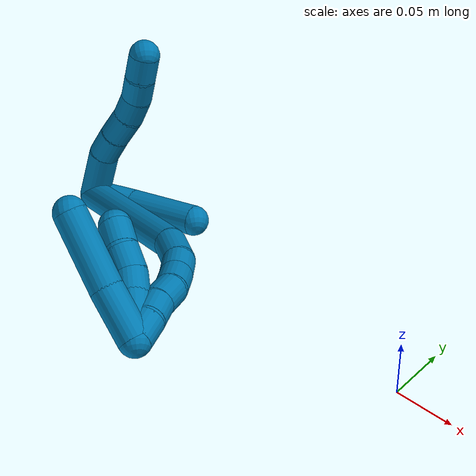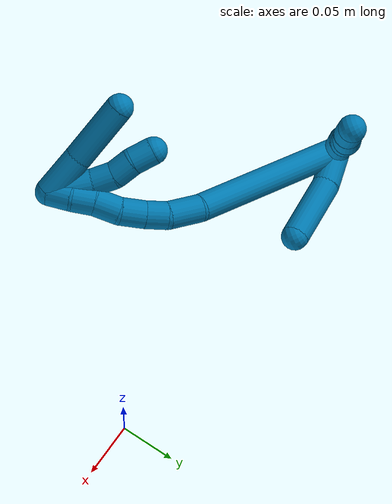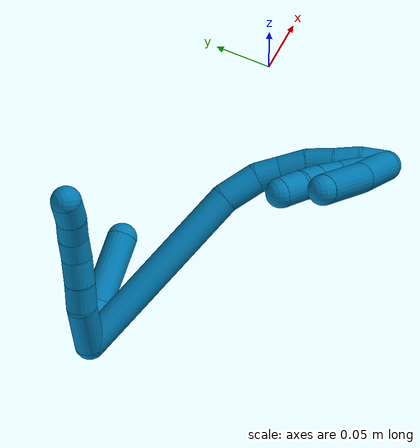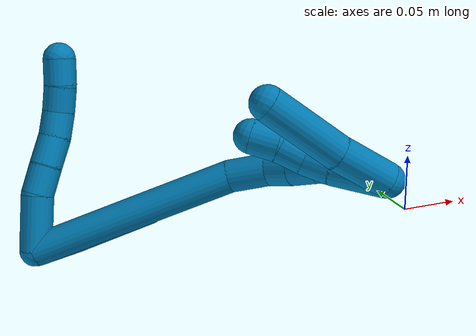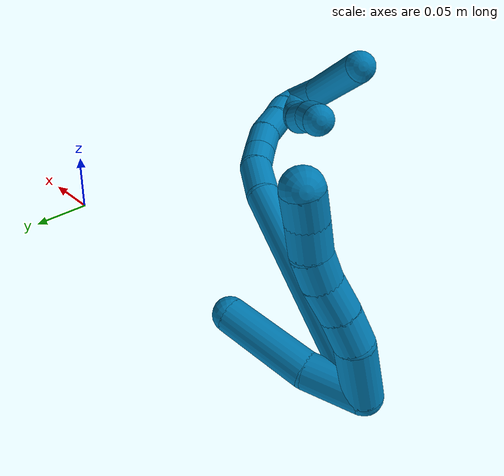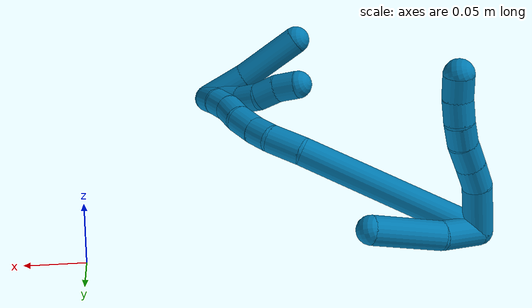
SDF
<sdf version="1.7">
 <world name="default">
  <model name="9">
   <static>0</static>
   <link name="9">
    <collision name="collision-cylinder-e_1_2_8">
     <pose>0.011427 0.016715 -0.007905 -2.01254 0.553561 -0.843344</pose>
     <geometry><cylinder><radius>0.0125</radius><length>0.043472</length></cylinder></geometry>
     <surface>
      <friction><ode><mu>1.16</mu><mu2>1.16</mu2><slip1>0</slip1><slip2>0</slip2></ode></friction>
      <contact><ode><kp>1e+06</kp><kd>1</kd><max_vel>0</max_vel><min_depth>0.001</min_depth></ode></contact>
     </surface>
    </collision>
    <visual name="visual-cylinder-e_1_2_8">
     <pose>0.011427 0.016715 -0.007905 -2.01254 0.553561 -0.843344</pose>
     <geometry><cylinder><radius>0.0125</radius><length>0.043472</length></cylinder></geometry>
     <material><ambient>0 0.490196 0.709804 1</ambient></material>
    </visual>
    <collision name="collision-cylinder-e_2_8_9">
     <pose>0.030786 0.041313 -0.017765 -1.81391 0.773603 -0.960121</pose>
     <geometry><cylinder><radius>0.0125</radius><length>0.022706</length></cylinder></geometry>
     <surface>
      <friction><ode><mu>1.16</mu><mu2>1.16</mu2><slip1>0</slip1><slip2>0</slip2></ode></friction>
      <contact><ode><kp>1e+06</kp><kd>1</kd><max_vel>0</max_vel><min_depth>0.001</min_depth></ode></contact>
     </surface>
    </collision>
    <visual name="visual-cylinder-e_2_8_9">
     <pose>0.030786 0.041313 -0.017765 -1.81391 0.773603 -0.960121</pose>
     <geometry><cylinder><radius>0.0125</radius><length>0.022706</length></cylinder></geometry>
     <material><ambient>0 0.490196 0.709804 1</ambient></material>
    </visual>
    <collision name="collision-cylinder-e_3_9_10">
     <pose>0.047384 0.056623 -0.021776 -1.84081 0.843905 -1.06613</pose>
     <geometry><cylinder><radius>0.0125</radius><length>0.023192</length></cylinder></geometry>
     <surface>
      <friction><ode><mu>1.16</mu><mu2>1.16</mu2><slip1>0</slip1><slip2>0</slip2></ode></friction>
      <contact><ode><kp>1e+06</kp><kd>1</kd><max_vel>0</max_vel><min_depth>0.001</min_depth></ode></contact>
     </surface>
    </collision>
    <visual name="visual-cylinder-e_3_9_10">
     <pose>0.047384 0.056623 -0.021776 -1.84081 0.843905 -1.06613</pose>
     <geometry><cylinder><radius>0.0125</radius><length>0.023192</length></cylinder></geometry>
     <material><ambient>0 0.490196 0.709804 1</ambient></material>
    </visual>
    <collision name="collision-cylinder-e_4_10_11">
     <pose>0.062482 0.071139 -0.026728 -1.9587 0.698668 -0.993905</pose>
     <geometry><cylinder><radius>0.0125</radius><length>0.020003</length></cylinder></geometry>
     <surface>
      <friction><ode><mu>1.16</mu><mu2>1.16</mu2><slip1>0</slip1><slip2>0</slip2></ode></friction>
      <contact><ode><kp>1e+06</kp><kd>1</kd><max_vel>0</max_vel><min_depth>0.001</min_depth></ode></contact>
     </surface>
    </collision>
    <visual name="visual-cylinder-e_4_10_11">
     <pose>0.062482 0.071139 -0.026728 -1.9587 0.698668 -0.993905</pose>
     <geometry><cylinder><radius>0.0125</radius><length>0.020003</length></cylinder></geometry>
     <material><ambient>0 0.490196 0.709804 1</ambient></material>
    </visual>
    <collision name="collision-cylinder-e_5_11_12">
     <pose>0.073765 0.08654 -0.032656 -1.92053 0.501449 -0.701761</pose>
     <geometry><cylinder><radius>0.0125</radius><length>0.020179</length></cylinder></geometry>
     <surface>
      <friction><ode><mu>1.16</mu><mu2>1.16</mu2><slip1>0</slip1><slip2>0</slip2></ode></friction>
      <contact><ode><kp>1e+06</kp><kd>1</kd><max_vel>0</max_vel><min_depth>0.001</min_depth></ode></contact>
     </surface>
    </collision>
    <visual name="visual-cylinder-e_5_11_12">
     <pose>0.073765 0.08654 -0.032656 -1.92053 0.501449 -0.701761</pose>
     <geometry><cylinder><radius>0.0125</radius><length>0.020179</length></cylinder></geometry>
     <material><ambient>0 0.490196 0.709804 1</ambient></material>
    </visual>
    <collision name="collision-cylinder-e_6_12_6">
     <pose>0.08365 0.102632 -0.040006 -2.07748 0.51486 -0.841081</pose>
     <geometry><cylinder><radius>0.0125</radius><length>0.020448</length></cylinder></geometry>
     <surface>
      <friction><ode><mu>1.16</mu><mu2>1.16</mu2><slip1>0</slip1><slip2>0</slip2></ode></friction>
      <contact><ode><kp>1e+06</kp><kd>1</kd><max_vel>0</max_vel><min_depth>0.001</min_depth></ode></contact>
     </surface>
    </collision>
    <visual name="visual-cylinder-e_6_12_6">
     <pose>0.08365 0.102632 -0.040006 -2.07748 0.51486 -0.841081</pose>
     <geometry><cylinder><radius>0.0125</radius><length>0.020448</length></cylinder></geometry>
     <material><ambient>0 0.490196 0.709804 1</ambient></material>
    </visual>
    <collision name="collision-cylinder-e_1_2_13">
     <pose>0.015972 -0.001174 0.009276 0.125944 1.04118 0.072274</pose>
     <geometry><cylinder><radius>0.0125</radius><length>0.037016</length></cylinder></geometry>
     <surface>
      <friction><ode><mu>1.16</mu><mu2>1.16</mu2><slip1>0</slip1><slip2>0</slip2></ode></friction>
      <contact><ode><kp>1e+06</kp><kd>1</kd><max_vel>0</max_vel><min_depth>0.001</min_depth></ode></contact>
     </surface>
    </collision>
    <visual name="visual-cylinder-e_1_2_13">
     <pose>0.015972 -0.001174 0.009276 0.125944 1.04118 0.072274</pose>
     <geometry><cylinder><radius>0.0125</radius><length>0.037016</length></cylinder></geometry>
     <material><ambient>0 0.490196 0.709804 1</ambient></material>
    </visual>
    <collision name="collision-cylinder-e_2_13_5">
     <pose>0.057285 0.0022 0.036688 -0.24578 0.935113 -0.12456</pose>
     <geometry><cylinder><radius>0.0125</radius><length>0.062984</length></cylinder></geometry>
     <surface>
      <friction><ode><mu>1.16</mu><mu2>1.16</mu2><slip1>0</slip1><slip2>0</slip2></ode></friction>
      <contact><ode><kp>1e+06</kp><kd>1</kd><max_vel>0</max_vel><min_depth>0.001</min_depth></ode></contact>
     </surface>
    </collision>
    <visual name="visual-cylinder-e_2_13_5">
     <pose>0.057285 0.0022 0.036688 -0.24578 0.935113 -0.12456</pose>
     <geometry><cylinder><radius>0.0125</radius><length>0.062984</length></cylinder></geometry>
     <material><ambient>0 0.490196 0.709804 1</ambient></material>
    </visual>
    <collision name="collision-cylinder-e_1_2_14">
     <pose>0.03922 0.042611 0.056129 -0.649347 0.507849 -0.174263</pose>
     <geometry><cylinder><radius>0.0125</radius><length>0.161299</length></cylinder></geometry>
     <surface>
      <friction><ode><mu>1.16</mu><mu2>1.16</mu2><slip1>0</slip1><slip2>0</slip2></ode></friction>
      <contact><ode><kp>1e+06</kp><kd>1</kd><max_vel>0</max_vel><min_depth>0.001</min_depth></ode></contact>
     </surface>
    </collision>
    <visual name="visual-cylinder-e_1_2_14">
     <pose>0.03922 0.042611 0.056129 -0.649347 0.507849 -0.174263</pose>
     <geometry><cylinder><radius>0.0125</radius><length>0.161299</length></cylinder></geometry>
     <material><ambient>0 0.490196 0.709804 1</ambient></material>
    </visual>
    <collision name="collision-cylinder-e_2_14_15">
     <pose>0.082494 0.093433 0.125055 -0.570425 0.260581 -0.076802</pose>
     <geometry><cylinder><radius>0.0125</radius><length>0.031472</length></cylinder></geometry>
     <surface>
      <friction><ode><mu>1.16</mu><mu2>1.16</mu2><slip1>0</slip1><slip2>0</slip2></ode></friction>
      <contact><ode><kp>1e+06</kp><kd>1</kd><max_vel>0</max_vel><min_depth>0.001</min_depth></ode></contact>
     </surface>
    </collision>
    <visual name="visual-cylinder-e_2_14_15">
     <pose>0.082494 0.093433 0.125055 -0.570425 0.260581 -0.076802</pose>
     <geometry><cylinder><radius>0.0125</radius><length>0.031472</length></cylinder></geometry>
     <material><ambient>0 0.490196 0.709804 1</ambient></material>
    </visual>
    <collision name="collision-cylinder-e_3_15_16">
     <pose>0.085914 0.107385 0.146168 -0.604241 -0.062623 0.019523</pose>
     <geometry><cylinder><radius>0.0125</radius><length>0.020251</length></cylinder></geometry>
     <surface>
      <friction><ode><mu>1.16</mu><mu2>1.16</mu2><slip1>0</slip1><slip2>0</slip2></ode></friction>
      <contact><ode><kp>1e+06</kp><kd>1</kd><max_vel>0</max_vel><min_depth>0.001</min_depth></ode></contact>
     </surface>
    </collision>
    <visual name="visual-cylinder-e_3_15_16">
     <pose>0.085914 0.107385 0.146168 -0.604241 -0.062623 0.019523</pose>
     <geometry><cylinder><radius>0.0125</radius><length>0.020251</length></cylinder></geometry>
     <material><ambient>0 0.490196 0.709804 1</ambient></material>
    </visual>
    <collision name="collision-cylinder-e_4_16_17">
     <pose>0.084369 0.120615 0.163148 -0.712789 -0.079469 0.029599</pose>
     <geometry><cylinder><radius>0.0125</radius><length>0.022974</length></cylinder></geometry>
     <surface>
      <friction><ode><mu>1.16</mu><mu2>1.16</mu2><slip1>0</slip1><slip2>0</slip2></ode></friction>
      <contact><ode><kp>1e+06</kp><kd>1</kd><max_vel>0</max_vel><min_depth>0.001</min_depth></ode></contact>
     </surface>
    </collision>
    <visual name="visual-cylinder-e_4_16_17">
     <pose>0.084369 0.120615 0.163148 -0.712789 -0.079469 0.029599</pose>
     <geometry><cylinder><radius>0.0125</radius><length>0.022974</length></cylinder></geometry>
     <material><ambient>0 0.490196 0.709804 1</ambient></material>
    </visual>
    <collision name="collision-cylinder-e_5_17_18">
     <pose>0.07955 0.135498 0.179558 -0.762099 -0.349733 0.141324</pose>
     <geometry><cylinder><radius>0.0125</radius><length>0.022801</length></cylinder></geometry>
     <surface>
      <friction><ode><mu>1.16</mu><mu2>1.16</mu2><slip1>0</slip1><slip2>0</slip2></ode></friction>
      <contact><ode><kp>1e+06</kp><kd>1</kd><max_vel>0</max_vel><min_depth>0.001</min_depth></ode></contact>
     </surface>
    </collision>
    <visual name="visual-cylinder-e_5_17_18">
     <pose>0.07955 0.135498 0.179558 -0.762099 -0.349733 0.141324</pose>
     <geometry><cylinder><radius>0.0125</radius><length>0.022801</length></cylinder></geometry>
     <material><ambient>0 0.490196 0.709804 1</ambient></material>
    </visual>
    <collision name="collision-cylinder-e_6_18_19">
     <pose>0.07303 0.148357 0.195291 -0.600138 -0.263858 0.082072</pose>
     <geometry><cylinder><radius>0.0125</radius><length>0.020043</length></cylinder></geometry>
     <surface>
      <friction><ode><mu>1.16</mu><mu2>1.16</mu2><slip1>0</slip1><slip2>0</slip2></ode></friction>
      <contact><ode><kp>1e+06</kp><kd>1</kd><max_vel>0</max_vel><min_depth>0.001</min_depth></ode></contact>
     </surface>
    </collision>
    <visual name="visual-cylinder-e_6_18_19">
     <pose>0.07303 0.148357 0.195291 -0.600138 -0.263858 0.082072</pose>
     <geometry><cylinder><radius>0.0125</radius><length>0.020043</length></cylinder></geometry>
     <material><ambient>0 0.490196 0.709804 1</ambient></material>
    </visual>
    <collision name="collision-cylinder-e_7_19_1">
     <pose>0.065727 0.15825 0.21166 -0.485986 -0.459216 0.11575</pose>
     <geometry><cylinder><radius>0.0125</radius><length>0.021159</length></cylinder></geometry>
     <surface>
      <friction><ode><mu>1.16</mu><mu2>1.16</mu2><slip1>0</slip1><slip2>0</slip2></ode></friction>
      <contact><ode><kp>1e+06</kp><kd>1</kd><max_vel>0</max_vel><min_depth>0.001</min_depth></ode></contact>
     </surface>
    </collision>
    <visual name="visual-cylinder-e_7_19_1">
     <pose>0.065727 0.15825 0.21166 -0.485986 -0.459216 0.11575</pose>
     <geometry><cylinder><radius>0.0125</radius><length>0.021159</length></cylinder></geometry>
     <material><ambient>0 0.490196 0.709804 1</ambient></material>
    </visual>
    <collision name="collision-cylinder-e_1_1_20">
     <pose>0.061283 0.157072 0.201252 2.85162 0.012489 0.085486</pose>
     <geometry><cylinder><radius>0.0125</radius><length>0.039229</length></cylinder></geometry>
     <surface>
      <friction><ode><mu>1.16</mu><mu2>1.16</mu2><slip1>0</slip1><slip2>0</slip2></ode></friction>
      <contact><ode><kp>1e+06</kp><kd>1</kd><max_vel>0</max_vel><min_depth>0.001</min_depth></ode></contact>
     </surface>
    </collision>
    <visual name="visual-cylinder-e_1_1_20">
     <pose>0.061283 0.157072 0.201252 2.85162 0.012489 0.085486</pose>
     <geometry><cylinder><radius>0.0125</radius><length>0.039229</length></cylinder></geometry>
     <material><ambient>0 0.490196 0.709804 1</ambient></material>
    </visual>
    <collision name="collision-cylinder-e_2_20_21">
     <pose>0.061622 0.150381 0.172259 3.03574 0.009204 0.173308</pose>
     <geometry><cylinder><radius>0.0125</radius><length>0.020514</length></cylinder></geometry>
     <surface>
      <friction><ode><mu>1.16</mu><mu2>1.16</mu2><slip1>0</slip1><slip2>0</slip2></ode></friction>
      <contact><ode><kp>1e+06</kp><kd>1</kd><max_vel>0</max_vel><min_depth>0.001</min_depth></ode></contact>
     </surface>
    </collision>
    <visual name="visual-cylinder-e_2_20_21">
     <pose>0.061622 0.150381 0.172259 3.03574 0.009204 0.173308</pose>
     <geometry><cylinder><radius>0.0125</radius><length>0.020514</length></cylinder></geometry>
     <material><ambient>0 0.490196 0.709804 1</ambient></material>
    </visual>
    <collision name="collision-cylinder-e_3_21_22">
     <pose>0.060168 0.151004 0.152309 -2.96833 -0.155189 1.46033</pose>
     <geometry><cylinder><radius>0.0125</radius><length>0.020039</length></cylinder></geometry>
     <surface>
      <friction><ode><mu>1.16</mu><mu2>1.16</mu2><slip1>0</slip1><slip2>0</slip2></ode></friction>
      <contact><ode><kp>1e+06</kp><kd>1</kd><max_vel>0</max_vel><min_depth>0.001</min_depth></ode></contact>
     </surface>
    </collision>
    <visual name="visual-cylinder-e_3_21_22">
     <pose>0.060168 0.151004 0.152309 -2.96833 -0.155189 1.46033</pose>
     <geometry><cylinder><radius>0.0125</radius><length>0.020039</length></cylinder></geometry>
     <material><ambient>0 0.490196 0.709804 1</ambient></material>
    </visual>
    <collision name="collision-cylinder-e_4_22_4">
     <pose>0.057162 0.152021 0.132578 3.07267 -0.144694 -2.25352</pose>
     <geometry><cylinder><radius>0.0125</radius><length>0.020218</length></cylinder></geometry>
     <surface>
      <friction><ode><mu>1.16</mu><mu2>1.16</mu2><slip1>0</slip1><slip2>0</slip2></ode></friction>
      <contact><ode><kp>1e+06</kp><kd>1</kd><max_vel>0</max_vel><min_depth>0.001</min_depth></ode></contact>
     </surface>
    </collision>
    <visual name="visual-cylinder-e_4_22_4">
     <pose>0.057162 0.152021 0.132578 3.07267 -0.144694 -2.25352</pose>
     <geometry><cylinder><radius>0.0125</radius><length>0.020218</length></cylinder></geometry>
     <material><ambient>0 0.490196 0.709804 1</ambient></material>
    </visual>
    <collision name="collision-cylinder-e_1_1_23">
     <pose>0.05559 0.169255 0.201574 -2.79962 -0.271016 1.33675</pose>
     <geometry><cylinder><radius>0.0125</radius><length>0.0407</length></cylinder></geometry>
     <surface>
      <friction><ode><mu>1.16</mu><mu2>1.16</mu2><slip1>0</slip1><slip2>0</slip2></ode></friction>
      <contact><ode><kp>1e+06</kp><kd>1</kd><max_vel>0</max_vel><min_depth>0.001</min_depth></ode></contact>
     </surface>
    </collision>
    <visual name="visual-cylinder-e_1_1_23">
     <pose>0.05559 0.169255 0.201574 -2.79962 -0.271016 1.33675</pose>
     <geometry><cylinder><radius>0.0125</radius><length>0.0407</length></cylinder></geometry>
     <material><ambient>0 0.490196 0.709804 1</ambient></material>
    </visual>
    <collision name="collision-cylinder-e_2_23_3">
     <pose>0.044152 0.187351 0.156447 -2.73364 -0.203417 0.9167</pose>
     <geometry><cylinder><radius>0.0125</radius><length>0.0593</length></cylinder></geometry>
     <surface>
      <friction><ode><mu>1.16</mu><mu2>1.16</mu2><slip1>0</slip1><slip2>0</slip2></ode></friction>
      <contact><ode><kp>1e+06</kp><kd>1</kd><max_vel>0</max_vel><min_depth>0.001</min_depth></ode></contact>
     </surface>
    </collision>
    <visual name="visual-cylinder-e_2_23_3">
     <pose>0.044152 0.187351 0.156447 -2.73364 -0.203417 0.9167</pose>
     <geometry><cylinder><radius>0.0125</radius><length>0.0593</length></cylinder></geometry>
     <material><ambient>0 0.490196 0.709804 1</ambient></material>
    </visual>
    <collision name="collision-sphere-3">
     <pose>0.038162 0.198871 0.129791 0 -0 0</pose>
     <geometry><sphere><radius>0.0125</radius></sphere></geometry>
     <surface>
      <friction><ode><mu>1.16</mu><mu2>1.16</mu2><slip1>0</slip1><slip2>0</slip2></ode></friction>
      <contact><ode><kp>1e+06</kp><kd>1</kd><max_vel>0</max_vel><min_depth>0.001</min_depth></ode></contact>
     </surface>
    </collision>
    <visual name="visual-sphere-3">
     <pose>0.038162 0.198871 0.129791 0 -0 0</pose>
     <geometry><sphere><radius>0.0125</radius></sphere></geometry>
     <material><ambient>0 0.490196 0.709804 1</ambient></material>
    </visual>
    <collision name="collision-sphere-23">
     <pose>0.050142 0.17583 0.183102 0 -0 0</pose>
     <geometry><sphere><radius>0.0125</radius></sphere></geometry>
     <surface>
      <friction><ode><mu>1.16</mu><mu2>1.16</mu2><slip1>0</slip1><slip2>0</slip2></ode></friction>
      <contact><ode><kp>1e+06</kp><kd>1</kd><max_vel>0</max_vel><min_depth>0.001</min_depth></ode></contact>
     </surface>
    </collision>
    <visual name="visual-sphere-23">
     <pose>0.050142 0.17583 0.183102 0 -0 0</pose>
     <geometry><sphere><radius>0.0125</radius></sphere></geometry>
     <material><ambient>0 0.490196 0.709804 1</ambient></material>
    </visual>
    <collision name="collision-sphere-4">
     <pose>0.055704 0.151332 0.122598 0 -0 0</pose>
     <geometry><sphere><radius>0.0125</radius></sphere></geometry>
     <surface>
      <friction><ode><mu>1.16</mu><mu2>1.16</mu2><slip1>0</slip1><slip2>0</slip2></ode></friction>
      <contact><ode><kp>1e+06</kp><kd>1</kd><max_vel>0</max_vel><min_depth>0.001</min_depth></ode></contact>
     </surface>
    </collision>
    <visual name="visual-sphere-4">
     <pose>0.055704 0.151332 0.122598 0 -0 0</pose>
     <geometry><sphere><radius>0.0125</radius></sphere></geometry>
     <material><ambient>0 0.490196 0.709804 1</ambient></material>
    </visual>
    <collision name="collision-sphere-22">
     <pose>0.058619 0.15271 0.142558 0 -0 0</pose>
     <geometry><sphere><radius>0.0125</radius></sphere></geometry>
     <surface>
      <friction><ode><mu>1.16</mu><mu2>1.16</mu2><slip1>0</slip1><slip2>0</slip2></ode></friction>
      <contact><ode><kp>1e+06</kp><kd>1</kd><max_vel>0</max_vel><min_depth>0.001</min_depth></ode></contact>
     </surface>
    </collision>
    <visual name="visual-sphere-22">
     <pose>0.058619 0.15271 0.142558 0 -0 0</pose>
     <geometry><sphere><radius>0.0125</radius></sphere></geometry>
     <material><ambient>0 0.490196 0.709804 1</ambient></material>
    </visual>
    <collision name="collision-sphere-21">
     <pose>0.061717 0.149297 0.162059 0 -0 0</pose>
     <geometry><sphere><radius>0.0125</radius></sphere></geometry>
     <surface>
      <friction><ode><mu>1.16</mu><mu2>1.16</mu2><slip1>0</slip1><slip2>0</slip2></ode></friction>
      <contact><ode><kp>1e+06</kp><kd>1</kd><max_vel>0</max_vel><min_depth>0.001</min_depth></ode></contact>
     </surface>
    </collision>
    <visual name="visual-sphere-21">
     <pose>0.061717 0.149297 0.162059 0 -0 0</pose>
     <geometry><sphere><radius>0.0125</radius></sphere></geometry>
     <material><ambient>0 0.490196 0.709804 1</ambient></material>
    </visual>
    <collision name="collision-sphere-20">
     <pose>0.061528 0.151464 0.182458 0 -0 0</pose>
     <geometry><sphere><radius>0.0125</radius></sphere></geometry>
     <surface>
      <friction><ode><mu>1.16</mu><mu2>1.16</mu2><slip1>0</slip1><slip2>0</slip2></ode></friction>
      <contact><ode><kp>1e+06</kp><kd>1</kd><max_vel>0</max_vel><min_depth>0.001</min_depth></ode></contact>
     </surface>
    </collision>
    <visual name="visual-sphere-20">
     <pose>0.061528 0.151464 0.182458 0 -0 0</pose>
     <geometry><sphere><radius>0.0125</radius></sphere></geometry>
     <material><ambient>0 0.490196 0.709804 1</ambient></material>
    </visual>
    <collision name="collision-sphere-12">
     <pose>0.078615 0.094852 -0.035688 0 -0 0</pose>
     <geometry><sphere><radius>0.0125</radius></sphere></geometry>
     <surface>
      <friction><ode><mu>1.16</mu><mu2>1.16</mu2><slip1>0</slip1><slip2>0</slip2></ode></friction>
      <contact><ode><kp>1e+06</kp><kd>1</kd><max_vel>0</max_vel><min_depth>0.001</min_depth></ode></contact>
     </surface>
    </collision>
    <visual name="visual-sphere-12">
     <pose>0.078615 0.094852 -0.035688 0 -0 0</pose>
     <geometry><sphere><radius>0.0125</radius></sphere></geometry>
     <material><ambient>0 0.490196 0.709804 1</ambient></material>
    </visual>
    <collision name="collision-sphere-11">
     <pose>0.068915 0.078228 -0.029625 0 -0 0</pose>
     <geometry><sphere><radius>0.0125</radius></sphere></geometry>
     <surface>
      <friction><ode><mu>1.16</mu><mu2>1.16</mu2><slip1>0</slip1><slip2>0</slip2></ode></friction>
      <contact><ode><kp>1e+06</kp><kd>1</kd><max_vel>0</max_vel><min_depth>0.001</min_depth></ode></contact>
     </surface>
    </collision>
    <visual name="visual-sphere-11">
     <pose>0.068915 0.078228 -0.029625 0 -0 0</pose>
     <geometry><sphere><radius>0.0125</radius></sphere></geometry>
     <material><ambient>0 0.490196 0.709804 1</ambient></material>
    </visual>
    <collision name="collision-sphere-10">
     <pose>0.056049 0.06405 -0.023831 0 -0 0</pose>
     <geometry><sphere><radius>0.0125</radius></sphere></geometry>
     <surface>
      <friction><ode><mu>1.16</mu><mu2>1.16</mu2><slip1>0</slip1><slip2>0</slip2></ode></friction>
      <contact><ode><kp>1e+06</kp><kd>1</kd><max_vel>0</max_vel><min_depth>0.001</min_depth></ode></contact>
     </surface>
    </collision>
    <visual name="visual-sphere-10">
     <pose>0.056049 0.06405 -0.023831 0 -0 0</pose>
     <geometry><sphere><radius>0.0125</radius></sphere></geometry>
     <material><ambient>0 0.490196 0.709804 1</ambient></material>
    </visual>
    <collision name="collision-sphere-9">
     <pose>0.038719 0.049196 -0.01972 0 -0 0</pose>
     <geometry><sphere><radius>0.0125</radius></sphere></geometry>
     <surface>
      <friction><ode><mu>1.16</mu><mu2>1.16</mu2><slip1>0</slip1><slip2>0</slip2></ode></friction>
      <contact><ode><kp>1e+06</kp><kd>1</kd><max_vel>0</max_vel><min_depth>0.001</min_depth></ode></contact>
     </surface>
    </collision>
    <visual name="visual-sphere-9">
     <pose>0.038719 0.049196 -0.01972 0 -0 0</pose>
     <geometry><sphere><radius>0.0125</radius></sphere></geometry>
     <material><ambient>0 0.490196 0.709804 1</ambient></material>
    </visual>
    <collision name="collision-sphere-2">
     <geometry><sphere><radius>0.0125</radius></sphere></geometry>
     <surface>
      <friction><ode><mu>1.16</mu><mu2>1.16</mu2><slip1>0</slip1><slip2>0</slip2></ode></friction>
      <contact><ode><kp>1e+06</kp><kd>1</kd><max_vel>0</max_vel><min_depth>0.001</min_depth></ode></contact>
     </surface>
    </collision>
    <visual name="visual-sphere-2">
     <geometry><sphere><radius>0.0125</radius></sphere></geometry>
     <material><ambient>0 0.490196 0.709804 1</ambient></material>
    </visual>
    <collision name="collision-sphere-19">
     <pose>0.070417 0.153821 0.203275 0 -0 0</pose>
     <geometry><sphere><radius>0.0125</radius></sphere></geometry>
     <surface>
      <friction><ode><mu>1.16</mu><mu2>1.16</mu2><slip1>0</slip1><slip2>0</slip2></ode></friction>
      <contact><ode><kp>1e+06</kp><kd>1</kd><max_vel>0</max_vel><min_depth>0.001</min_depth></ode></contact>
     </surface>
    </collision>
    <visual name="visual-sphere-19">
     <pose>0.070417 0.153821 0.203275 0 -0 0</pose>
     <geometry><sphere><radius>0.0125</radius></sphere></geometry>
     <material><ambient>0 0.490196 0.709804 1</ambient></material>
    </visual>
    <collision name="collision-sphere-8">
     <pose>0.022854 0.03343 -0.01581 0 -0 0</pose>
     <geometry><sphere><radius>0.0125</radius></sphere></geometry>
     <surface>
      <friction><ode><mu>1.16</mu><mu2>1.16</mu2><slip1>0</slip1><slip2>0</slip2></ode></friction>
      <contact><ode><kp>1e+06</kp><kd>1</kd><max_vel>0</max_vel><min_depth>0.001</min_depth></ode></contact>
     </surface>
    </collision>
    <visual name="visual-sphere-8">
     <pose>0.022854 0.03343 -0.01581 0 -0 0</pose>
     <geometry><sphere><radius>0.0125</radius></sphere></geometry>
     <material><ambient>0 0.490196 0.709804 1</ambient></material>
    </visual>
    <collision name="collision-sphere-6">
     <pose>0.088684 0.110413 -0.044324 0 -0 0</pose>
     <geometry><sphere><radius>0.0125</radius></sphere></geometry>
     <surface>
      <friction><ode><mu>1.16</mu><mu2>1.16</mu2><slip1>0</slip1><slip2>0</slip2></ode></friction>
      <contact><ode><kp>1e+06</kp><kd>1</kd><max_vel>0</max_vel><min_depth>0.001</min_depth></ode></contact>
     </surface>
    </collision>
    <visual name="visual-sphere-6">
     <pose>0.088684 0.110413 -0.044324 0 -0 0</pose>
     <geometry><sphere><radius>0.0125</radius></sphere></geometry>
     <material><ambient>0 0.490196 0.709804 1</ambient></material>
    </visual>
    <collision name="collision-sphere-13">
     <pose>0.031945 -0.002349 0.018552 0 -0 0</pose>
     <geometry><sphere><radius>0.0125</radius></sphere></geometry>
     <surface>
      <friction><ode><mu>1.16</mu><mu2>1.16</mu2><slip1>0</slip1><slip2>0</slip2></ode></friction>
      <contact><ode><kp>1e+06</kp><kd>1</kd><max_vel>0</max_vel><min_depth>0.001</min_depth></ode></contact>
     </surface>
    </collision>
    <visual name="visual-sphere-13">
     <pose>0.031945 -0.002349 0.018552 0 -0 0</pose>
     <geometry><sphere><radius>0.0125</radius></sphere></geometry>
     <material><ambient>0 0.490196 0.709804 1</ambient></material>
    </visual>
    <collision name="collision-sphere-5">
     <pose>0.082626 0.00675 0.054824 0 -0 0</pose>
     <geometry><sphere><radius>0.0125</radius></sphere></geometry>
     <surface>
      <friction><ode><mu>1.16</mu><mu2>1.16</mu2><slip1>0</slip1><slip2>0</slip2></ode></friction>
      <contact><ode><kp>1e+06</kp><kd>1</kd><max_vel>0</max_vel><min_depth>0.001</min_depth></ode></contact>
     </surface>
    </collision>
    <visual name="visual-sphere-5">
     <pose>0.082626 0.00675 0.054824 0 -0 0</pose>
     <geometry><sphere><radius>0.0125</radius></sphere></geometry>
     <material><ambient>0 0.490196 0.709804 1</ambient></material>
    </visual>
    <collision name="collision-sphere-14">
     <pose>0.078439 0.085223 0.112257 0 -0 0</pose>
     <geometry><sphere><radius>0.0125</radius></sphere></geometry>
     <surface>
      <friction><ode><mu>1.16</mu><mu2>1.16</mu2><slip1>0</slip1><slip2>0</slip2></ode></friction>
      <contact><ode><kp>1e+06</kp><kd>1</kd><max_vel>0</max_vel><min_depth>0.001</min_depth></ode></contact>
     </surface>
    </collision>
    <visual name="visual-sphere-14">
     <pose>0.078439 0.085223 0.112257 0 -0 0</pose>
     <geometry><sphere><radius>0.0125</radius></sphere></geometry>
     <material><ambient>0 0.490196 0.709804 1</ambient></material>
    </visual>
    <collision name="collision-sphere-15">
     <pose>0.086548 0.101644 0.137852 0 -0 0</pose>
     <geometry><sphere><radius>0.0125</radius></sphere></geometry>
     <surface>
      <friction><ode><mu>1.16</mu><mu2>1.16</mu2><slip1>0</slip1><slip2>0</slip2></ode></friction>
      <contact><ode><kp>1e+06</kp><kd>1</kd><max_vel>0</max_vel><min_depth>0.001</min_depth></ode></contact>
     </surface>
    </collision>
    <visual name="visual-sphere-15">
     <pose>0.086548 0.101644 0.137852 0 -0 0</pose>
     <geometry><sphere><radius>0.0125</radius></sphere></geometry>
     <material><ambient>0 0.490196 0.709804 1</ambient></material>
    </visual>
    <collision name="collision-sphere-16">
     <pose>0.085281 0.113126 0.154485 0 -0 0</pose>
     <geometry><sphere><radius>0.0125</radius></sphere></geometry>
     <surface>
      <friction><ode><mu>1.16</mu><mu2>1.16</mu2><slip1>0</slip1><slip2>0</slip2></ode></friction>
      <contact><ode><kp>1e+06</kp><kd>1</kd><max_vel>0</max_vel><min_depth>0.001</min_depth></ode></contact>
     </surface>
    </collision>
    <visual name="visual-sphere-16">
     <pose>0.085281 0.113126 0.154485 0 -0 0</pose>
     <geometry><sphere><radius>0.0125</radius></sphere></geometry>
     <material><ambient>0 0.490196 0.709804 1</ambient></material>
    </visual>
    <collision name="collision-sphere-17">
     <pose>0.083457 0.128103 0.171811 0 -0 0</pose>
     <geometry><sphere><radius>0.0125</radius></sphere></geometry>
     <surface>
      <friction><ode><mu>1.16</mu><mu2>1.16</mu2><slip1>0</slip1><slip2>0</slip2></ode></friction>
      <contact><ode><kp>1e+06</kp><kd>1</kd><max_vel>0</max_vel><min_depth>0.001</min_depth></ode></contact>
     </surface>
    </collision>
    <visual name="visual-sphere-17">
     <pose>0.083457 0.128103 0.171811 0 -0 0</pose>
     <geometry><sphere><radius>0.0125</radius></sphere></geometry>
     <material><ambient>0 0.490196 0.709804 1</ambient></material>
    </visual>
    <collision name="collision-sphere-18">
     <pose>0.075644 0.142893 0.187306 0 -0 0</pose>
     <geometry><sphere><radius>0.0125</radius></sphere></geometry>
     <surface>
      <friction><ode><mu>1.16</mu><mu2>1.16</mu2><slip1>0</slip1><slip2>0</slip2></ode></friction>
      <contact><ode><kp>1e+06</kp><kd>1</kd><max_vel>0</max_vel><min_depth>0.001</min_depth></ode></contact>
     </surface>
    </collision>
    <visual name="visual-sphere-18">
     <pose>0.075644 0.142893 0.187306 0 -0 0</pose>
     <geometry><sphere><radius>0.0125</radius></sphere></geometry>
     <material><ambient>0 0.490196 0.709804 1</ambient></material>
    </visual>
    <collision name="collision-sphere-1">
     <pose>0.061038 0.16268 0.220046 0 -0 0</pose>
     <geometry><sphere><radius>0.0125</radius></sphere></geometry>
     <surface>
      <friction><ode><mu>1.16</mu><mu2>1.16</mu2><slip1>0</slip1><slip2>0</slip2></ode></friction>
      <contact><ode><kp>1e+06</kp><kd>1</kd><max_vel>0</max_vel><min_depth>0.001</min_depth></ode></contact>
     </surface>
    </collision>
    <visual name="visual-sphere-1">
     <pose>0.061038 0.16268 0.220046 0 -0 0</pose>
     <geometry><sphere><radius>0.0125</radius></sphere></geometry>
     <material><ambient>0 0.490196 0.709804 1</ambient></material>
    </visual>
    <inertial>
     <pose>0.052163 0.087809 0.08829 0 -0 0</pose>
     <mass>0.75</mass>
     <inertia>
      <ixx>0.000338</ixx>
      <ixy>0</ixy>
      <ixz>0</ixz>
      <iyy>0.000303</iyy>
      <iyz>0</iyz>
      <izz>-0.000414</izz>
     </inertia>
    </inertial>
   </link>
   <pose>-0.324952 0.005848 0.014434 1.95521 -0.312543 0.771927</pose>
  </model>
 </world>
</sdf>
